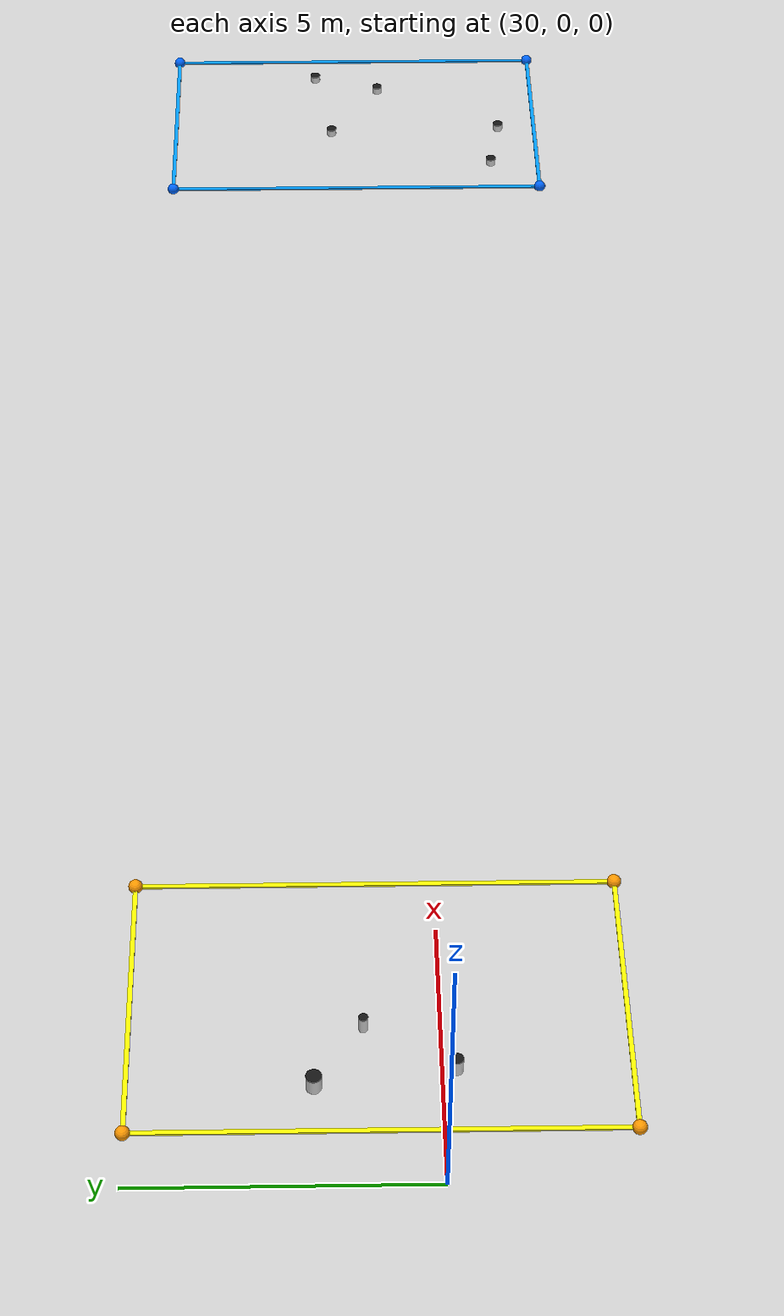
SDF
<?xml version="1.0" ?>
<sdf version="1.6">
  <world name="cuadc_k7">
    <plugin name="gazebo_ros_init" filename="libgazebo_ros_init.so"/>
    <plugin name="gazebo_ros_state" filename="libgazebo_ros_state.so"/>

    <include>
      <uri>model://sun</uri>
    </include>

    <include>
      <uri>model://ground_plane</uri>
    </include>

    <!-- ==================== 投放区 ==================== -->

    <!-- 后端框边 (NED y=30, Gazebo x=31.01) -->
    <model name="drop_border_back">
      <static>true</static>
      <pose>31.01 0.98 0.015 0 0 0</pose>
      <link name="link">
        <collision name="collision">
          <geometry><box><size>0.08 8.0 0.03</size></box></geometry>
        </collision>
        <visual name="visual">
          <geometry><box><size>0.08 8.0 0.03</size></box></geometry>
          <material>
            <ambient>1 1 0 1</ambient>
            <diffuse>1 1 0 1</diffuse>
          </material>
        </visual>
      </link>
    </model>

    <!-- 前端框边 (NED y=35, Gazebo x=36.01) -->
    <model name="drop_border_front">
      <static>true</static>
      <pose>36.01 0.98 0.015 0 0 0</pose>
      <link name="link">
        <collision name="collision">
          <geometry><box><size>0.08 8.0 0.03</size></box></geometry>
        </collision>
        <visual name="visual">
          <geometry><box><size>0.08 8.0 0.03</size></box></geometry>
          <material>
            <ambient>1 1 0 1</ambient>
            <diffuse>1 1 0 1</diffuse>
          </material>
        </visual>
      </link>
    </model>

    <!-- 左框边 (NED x=-4, Gazebo y=-3.02) -->
    <model name="drop_border_left">
      <static>true</static>
      <pose>33.51 -3.02 0.015 0 0 0</pose>
      <link name="link">
        <collision name="collision">
          <geometry><box><size>5.0 0.08 0.03</size></box></geometry>
        </collision>
        <visual name="visual">
          <geometry><box><size>5.0 0.08 0.03</size></box></geometry>
          <material>
            <ambient>1 1 0 1</ambient>
            <diffuse>1 1 0 1</diffuse>
          </material>
        </visual>
      </link>
    </model>

    <!-- 右框边 (NED x=+4, Gazebo y=4.98) -->
    <model name="drop_border_right">
      <static>true</static>
      <pose>33.51 4.98 0.015 0 0 0</pose>
      <link name="link">
        <collision name="collision">
          <geometry><box><size>5.0 0.08 0.03</size></box></geometry>
        </collision>
        <visual name="visual">
          <geometry><box><size>5.0 0.08 0.03</size></box></geometry>
          <material>
            <ambient>1 1 0 1</ambient>
            <diffuse>1 1 0 1</diffuse>
          </material>
        </visual>
      </link>
    </model>

    <!-- 投放区 4 角标 (橙色) -->
    <model name="drop_corner_bl"><static>true</static><pose>31.01 -3.02 0.02 0 0 0</pose>
      <link name="link">
        <visual name="visual">
          <geometry><sphere><radius>0.12</radius></sphere></geometry>
          <material><ambient>1 0.6 0 1</ambient><diffuse>1 0.6 0 1</diffuse></material>
        </visual>
      </link>
    </model>
    <model name="drop_corner_br"><static>true</static><pose>31.01 4.98 0.02 0 0 0</pose>
      <link name="link">
        <visual name="visual">
          <geometry><sphere><radius>0.12</radius></sphere></geometry>
          <material><ambient>1 0.6 0 1</ambient><diffuse>1 0.6 0 1</diffuse></material>
        </visual>
      </link>
    </model>
    <model name="drop_corner_fl"><static>true</static><pose>36.01 -3.02 0.02 0 0 0</pose>
      <link name="link">
        <visual name="visual">
          <geometry><sphere><radius>0.12</radius></sphere></geometry>
          <material><ambient>1 0.6 0 1</ambient><diffuse>1 0.6 0 1</diffuse></material>
        </visual>
      </link>
    </model>
    <model name="drop_corner_fr"><static>true</static><pose>36.01 4.98 0.02 0 0 0</pose>
      <link name="link">
        <visual name="visual">
          <geometry><sphere><radius>0.12</radius></sphere></geometry>
          <material><ambient>1 0.6 0 1</ambient><diffuse>1 0.6 0 1</diffuse></material>
        </visual>
      </link>
    </model>

    <!-- ==================== 侦察区 (无目标物) ==================== -->

    <!-- 侦察区后端框边 (NED y=55, Gazebo x=56.01) -->
    <!-- ===== 投放桶 (规则: 直径 15/20/25cm, 高 30cm, 白色; 落桶内 A 区) ===== -->
    <model name="target_bucket_1">
      <static>true</static>
      <pose>31.843 2.021 0.150 0 0 0</pose>
      <link name="bucket_link">
        <collision name="bucket_collision">
          <geometry>
            <cylinder><radius>0.1250</radius><length>0.3000</length></cylinder>
          </geometry>
        </collision>

        <visual name="bucket_visual">
          <geometry>
            <cylinder><radius>0.1250</radius><length>0.3000</length></cylinder>
          </geometry>
          <material>
            <ambient>0.92 0.92 0.92 1</ambient>
            <diffuse>0.92 0.92 0.92 1</diffuse>
            <specular>0.1 0.1 0.1 1</specular>
          </material>
        </visual>
        <visual name="bucket_rim">
          <pose>0 0 0.1500 0 0 0</pose>
          <geometry>
            <cylinder><radius>0.1300</radius><length>0.012</length></cylinder>
          </geometry>
          <material>
            <ambient>0.08 0.08 0.08 1</ambient>
            <diffuse>0.08 0.08 0.08 1</diffuse>
          </material>
        </visual>
      </link>
    </model>
    <model name="target_bucket_2">
      <static>true</static>
      <pose>32.148 -0.236 0.150 0 0 0</pose>
      <link name="bucket_link">
        <collision name="bucket_collision">
          <geometry>
            <cylinder><radius>0.1000</radius><length>0.3000</length></cylinder>
          </geometry>
        </collision>

        <visual name="bucket_visual">
          <geometry>
            <cylinder><radius>0.1000</radius><length>0.3000</length></cylinder>
          </geometry>
          <material>
            <ambient>0.92 0.92 0.92 1</ambient>
            <diffuse>0.92 0.92 0.92 1</diffuse>
            <specular>0.1 0.1 0.1 1</specular>
          </material>
        </visual>
        <visual name="bucket_rim">
          <pose>0 0 0.1500 0 0 0</pose>
          <geometry>
            <cylinder><radius>0.1040</radius><length>0.012</length></cylinder>
          </geometry>
          <material>
            <ambient>0.08 0.08 0.08 1</ambient>
            <diffuse>0.08 0.08 0.08 1</diffuse>
          </material>
        </visual>
      </link>
    </model>
    <model name="target_bucket_3">
      <static>true</static>
      <pose>32.986 1.228 0.150 0 0 0</pose>
      <link name="bucket_link">
        <collision name="bucket_collision">
          <geometry>
            <cylinder><radius>0.0750</radius><length>0.3000</length></cylinder>
          </geometry>
        </collision>

        <visual name="bucket_visual">
          <geometry>
            <cylinder><radius>0.0750</radius><length>0.3000</length></cylinder>
          </geometry>
          <material>
            <ambient>0.92 0.92 0.92 1</ambient>
            <diffuse>0.92 0.92 0.92 1</diffuse>
            <specular>0.1 0.1 0.1 1</specular>
          </material>
        </visual>
        <visual name="bucket_rim">
          <pose>0 0 0.1500 0 0 0</pose>
          <geometry>
            <cylinder><radius>0.0780</radius><length>0.012</length></cylinder>
          </geometry>
          <material>
            <ambient>0.08 0.08 0.08 1</ambient>
            <diffuse>0.08 0.08 0.08 1</diffuse>
          </material>
        </visual>
      </link>
    </model>

    <model name="scout_border_back">
      <static>true</static>
      <pose>56.01 0.98 0.015 0 0 0</pose>
      <link name="link">
        <collision name="collision">
          <geometry><box><size>0.08 8.0 0.03</size></box></geometry>
        </collision>
        <visual name="visual">
          <geometry><box><size>0.08 8.0 0.03</size></box></geometry>
          <material>
            <ambient>0 0.6 1 1</ambient>
            <diffuse>0 0.6 1 1</diffuse>
          </material>
        </visual>
      </link>
    </model>

    <!-- 侦察区前端框边 (NED y=60, Gazebo x=61.01) -->
    <model name="scout_border_front">
      <static>true</static>
      <pose>61.01 0.98 0.015 0 0 0</pose>
      <link name="link">
        <collision name="collision">
          <geometry><box><size>0.08 8.0 0.03</size></box></geometry>
        </collision>
        <visual name="visual">
          <geometry><box><size>0.08 8.0 0.03</size></box></geometry>
          <material>
            <ambient>0 0.6 1 1</ambient>
            <diffuse>0 0.6 1 1</diffuse>
          </material>
        </visual>
      </link>
    </model>

    <!-- 侦察区左框边 (NED x=-4, Gazebo y=-3.02) -->
    <model name="scout_border_left">
      <static>true</static>
      <pose>58.51 -3.02 0.015 0 0 0</pose>
      <link name="link">
        <collision name="collision">
          <geometry><box><size>5.0 0.08 0.03</size></box></geometry>
        </collision>
        <visual name="visual">
          <geometry><box><size>5.0 0.08 0.03</size></box></geometry>
          <material>
            <ambient>0 0.6 1 1</ambient>
            <diffuse>0 0.6 1 1</diffuse>
          </material>
        </visual>
      </link>
    </model>

    <!-- 侦察区右框边 (NED x=+4, Gazebo y=4.98) -->
    <model name="scout_border_right">
      <static>true</static>
      <pose>58.51 4.98 0.015 0 0 0</pose>
      <link name="link">
        <collision name="collision">
          <geometry><box><size>5.0 0.08 0.03</size></box></geometry>
        </collision>
        <visual name="visual">
          <geometry><box><size>5.0 0.08 0.03</size></box></geometry>
          <material>
            <ambient>0 0.6 1 1</ambient>
            <diffuse>0 0.6 1 1</diffuse>
          </material>
        </visual>
      </link>
    </model>

    <!-- 侦察区 4 角标 (蓝色) -->
    <model name="scout_corner_bl"><static>true</static><pose>56.01 -3.02 0.02 0 0 0</pose>
      <link name="link">
        <visual name="visual">
          <geometry><sphere><radius>0.12</radius></sphere></geometry>
          <material><ambient>0 0.4 1 1</ambient><diffuse>0 0.4 1 1</diffuse></material>
        </visual>
      </link>
    </model>
    <model name="scout_corner_br"><static>true</static><pose>56.01 4.98 0.02 0 0 0</pose>
      <link name="link">
        <visual name="visual">
          <geometry><sphere><radius>0.12</radius></sphere></geometry>
          <material><ambient>0 0.4 1 1</ambient><diffuse>0 0.4 1 1</diffuse></material>
        </visual>
      </link>
    </model>
    <model name="scout_corner_fl"><static>true</static><pose>61.01 -3.02 0.02 0 0 0</pose>
      <link name="link">
        <visual name="visual">
          <geometry><sphere><radius>0.12</radius></sphere></geometry>
          <material><ambient>0 0.4 1 1</ambient><diffuse>0 0.4 1 1</diffuse></material>
        </visual>
      </link>
    </model>
    <model name="scout_corner_fr"><static>true</static><pose>61.01 4.98 0.02 0 0 0</pose>
      <link name="link">
        <visual name="visual">
          <geometry><sphere><radius>0.12</radius></sphere></geometry>
          <material><ambient>0 0.4 1 1</ambient><diffuse>0 0.4 1 1</diffuse></material>
        </visual>
      </link>
    </model>

    <!-- ===== 侦察筒 (规则: 直径 20cm, 高 15cm, 白色) ===== -->
    <model name="recon_bucket_1">
      <static>true</static>
      <pose>56.914 -1.988 0.075 0 0 0</pose>
      <link name="bucket_link">
        <collision name="bucket_collision">
          <geometry>
            <cylinder><radius>0.1000</radius><length>0.1500</length></cylinder>
          </geometry>
        </collision>

        <visual name="bucket_visual">
          <geometry>
            <cylinder><radius>0.1000</radius><length>0.1500</length></cylinder>
          </geometry>
          <material>
            <ambient>0.92 0.92 0.92 1</ambient>
            <diffuse>0.92 0.92 0.92 1</diffuse>
            <specular>0.1 0.1 0.1 1</specular>
          </material>
        </visual>
        <visual name="bucket_rim">
          <pose>0 0 0.0750 0 0 0</pose>
          <geometry>
            <cylinder><radius>0.1040</radius><length>0.012</length></cylinder>
          </geometry>
          <material>
            <ambient>0.08 0.08 0.08 1</ambient>
            <diffuse>0.08 0.08 0.08 1</diffuse>
          </material>
        </visual>
      </link>
    </model>
    <model name="recon_bucket_2">
      <static>true</static>
      <pose>58.107 1.512 0.075 0 0 0</pose>
      <link name="bucket_link">
        <collision name="bucket_collision">
          <geometry>
            <cylinder><radius>0.1000</radius><length>0.1500</length></cylinder>
          </geometry>
        </collision>

        <visual name="bucket_visual">
          <geometry>
            <cylinder><radius>0.1000</radius><length>0.1500</length></cylinder>
          </geometry>
          <material>
            <ambient>0.92 0.92 0.92 1</ambient>
            <diffuse>0.92 0.92 0.92 1</diffuse>
            <specular>0.1 0.1 0.1 1</specular>
          </material>
        </visual>
        <visual name="bucket_rim">
          <pose>0 0 0.0750 0 0 0</pose>
          <geometry>
            <cylinder><radius>0.1040</radius><length>0.012</length></cylinder>
          </geometry>
          <material>
            <ambient>0.08 0.08 0.08 1</ambient>
            <diffuse>0.08 0.08 0.08 1</diffuse>
          </material>
        </visual>
      </link>
    </model>
    <model name="recon_bucket_3">
      <static>true</static>
      <pose>58.251 -2.211 0.075 0 0 0</pose>
      <link name="bucket_link">
        <collision name="bucket_collision">
          <geometry>
            <cylinder><radius>0.1000</radius><length>0.1500</length></cylinder>
          </geometry>
        </collision>

        <visual name="bucket_visual">
          <geometry>
            <cylinder><radius>0.1000</radius><length>0.1500</length></cylinder>
          </geometry>
          <material>
            <ambient>0.92 0.92 0.92 1</ambient>
            <diffuse>0.92 0.92 0.92 1</diffuse>
            <specular>0.1 0.1 0.1 1</specular>
          </material>
        </visual>
        <visual name="bucket_rim">
          <pose>0 0 0.0750 0 0 0</pose>
          <geometry>
            <cylinder><radius>0.1040</radius><length>0.012</length></cylinder>
          </geometry>
          <material>
            <ambient>0.08 0.08 0.08 1</ambient>
            <diffuse>0.08 0.08 0.08 1</diffuse>
          </material>
        </visual>
      </link>
    </model>
    <model name="recon_bucket_4">
      <static>true</static>
      <pose>59.785 0.459 0.075 0 0 0</pose>
      <link name="bucket_link">
        <collision name="bucket_collision">
          <geometry>
            <cylinder><radius>0.1000</radius><length>0.1500</length></cylinder>
          </geometry>
        </collision>

        <visual name="bucket_visual">
          <geometry>
            <cylinder><radius>0.1000</radius><length>0.1500</length></cylinder>
          </geometry>
          <material>
            <ambient>0.92 0.92 0.92 1</ambient>
            <diffuse>0.92 0.92 0.92 1</diffuse>
            <specular>0.1 0.1 0.1 1</specular>
          </material>
        </visual>
        <visual name="bucket_rim">
          <pose>0 0 0.0750 0 0 0</pose>
          <geometry>
            <cylinder><radius>0.1040</radius><length>0.012</length></cylinder>
          </geometry>
          <material>
            <ambient>0.08 0.08 0.08 1</ambient>
            <diffuse>0.08 0.08 0.08 1</diffuse>
          </material>
        </visual>
      </link>
    </model>
    <model name="recon_bucket_5">
      <static>true</static>
      <pose>60.256 1.859 0.075 0 0 0</pose>
      <link name="bucket_link">
        <collision name="bucket_collision">
          <geometry>
            <cylinder><radius>0.1000</radius><length>0.1500</length></cylinder>
          </geometry>
        </collision>

        <visual name="bucket_visual">
          <geometry>
            <cylinder><radius>0.1000</radius><length>0.1500</length></cylinder>
          </geometry>
          <material>
            <ambient>0.92 0.92 0.92 1</ambient>
            <diffuse>0.92 0.92 0.92 1</diffuse>
            <specular>0.1 0.1 0.1 1</specular>
          </material>
        </visual>
        <visual name="bucket_rim">
          <pose>0 0 0.0750 0 0 0</pose>
          <geometry>
            <cylinder><radius>0.1040</radius><length>0.012</length></cylinder>
          </geometry>
          <material>
            <ambient>0.08 0.08 0.08 1</ambient>
            <diffuse>0.08 0.08 0.08 1</diffuse>
          </material>
        </visual>
      </link>
    </model>

  </world>
</sdf>
